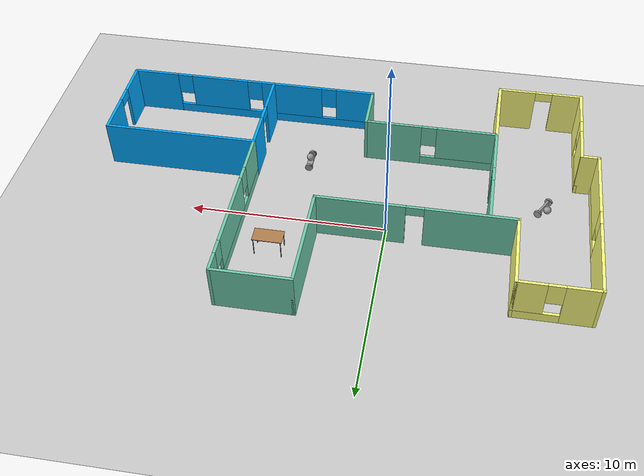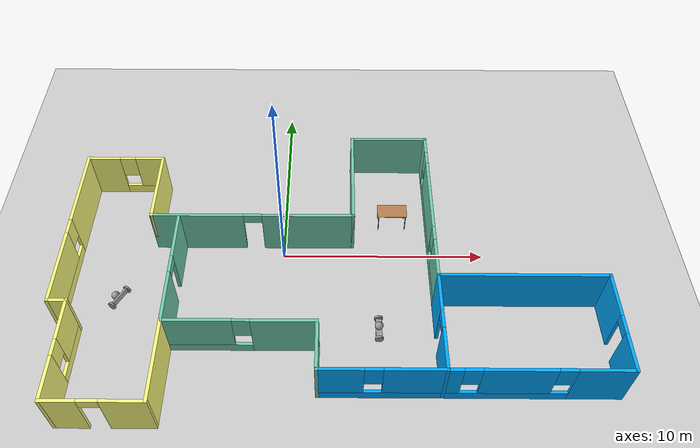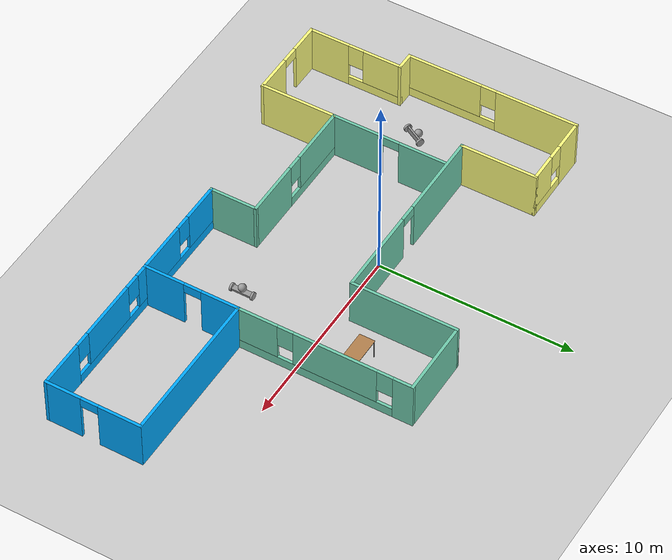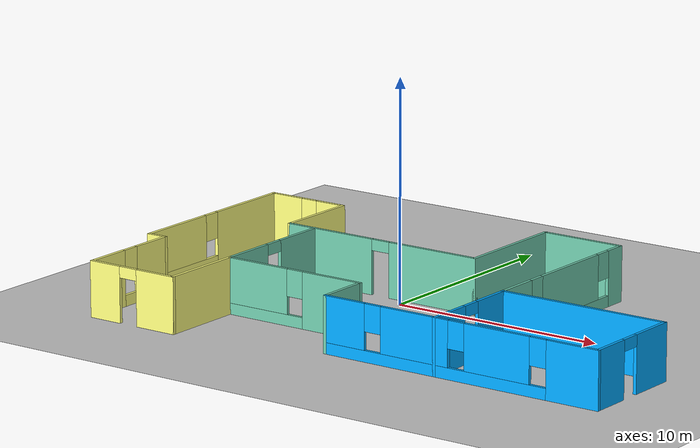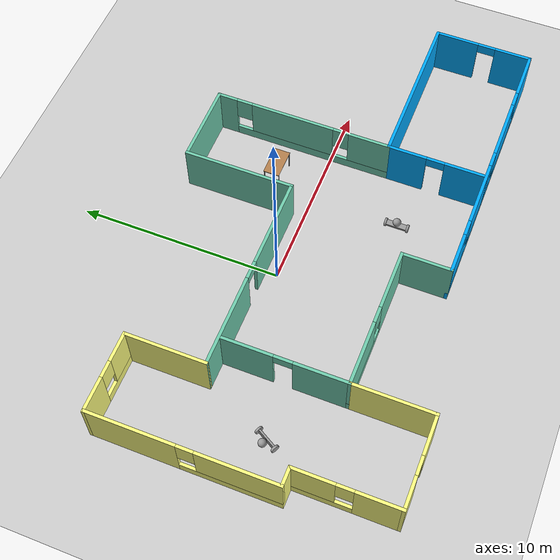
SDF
<sdf version="1.6">
 <world name="default">
  <plugin name="hello" filename="libhello.so"/>
  <light name="sun" type="directional">
   <pose>0 0 10 0 -0 0</pose>
   <diffuse>0.8 0.8 0.8 1</diffuse>
   <specular>0.2 0.2 0.2 1</specular>
   <attenuation>
    <range>1000</range>
    <constant>0.9</constant>
    <linear>0.01</linear>
    <quadratic>0.001</quadratic>
   </attenuation>
   <direction>-0.5 0.1 -0.9</direction>
  </light>
  <model name="ground_plane">
   <static>1</static>
   <link name="link">
    <collision name="collision">
     <geometry><plane><normal>0 0 1</normal><size>100 100</size></plane></geometry>
     <surface><friction><ode><mu>100</mu><mu2>50</mu2></ode></friction></surface>
    </collision>
    <visual name="visual">
     <cast_shadows>0</cast_shadows>
     <geometry><plane><normal>0 0 1</normal><size>100 100</size></plane></geometry>
     <material>
      <script><uri>file://media/materials/scripts/gazebo.material</uri><name>Gazebo/Grey</name></script>
     </material>
    </visual>
   </link>
  </model>
  <gravity>0 0 -9.8</gravity>
  <magnetic_field>6e-06 2.3e-05 -4.2e-05</magnetic_field>
  <atmosphere type="adiabatic"/>
  <physics name="default_physics" default="0" type="ode">
   <max_step_size>0.001</max_step_size>
   <real_time_factor>1</real_time_factor>
   <real_time_update_rate>1000</real_time_update_rate>
  </physics>
  <scene><ambient>0.4 0.4 0.4 1</ambient><background>0.7 0.7 0.7 1</background><shadows>1</shadows></scene>
  <spherical_coordinates>
   <surface_model>EARTH_WGS84</surface_model>
   <latitude_deg>0</latitude_deg>
   <longitude_deg>0</longitude_deg>
   <elevation>0</elevation>
   <heading_deg>0</heading_deg>
  </spherical_coordinates>
  <model name="mybuilding">
   <pose>2.451 -1.62905 0 0 -0 0</pose>
   <link name="Wall_10">
    <collision name="Wall_10_Collision">
     <geometry><box><size>8 0.15 2.5</size></box></geometry>
     <pose>0 0 1.25 0 -0 0</pose>
    </collision>
    <visual name="Wall_10_Visual">
     <pose>0 0 1.25 0 -0 0</pose>
     <geometry><box><size>8 0.15 2.5</size></box></geometry>
     <material>
      <script><uri>file://media/materials/scripts/gazebo.material</uri><name>Gazebo/Grey</name></script>
      <ambient>0 0.666667 1 1</ambient>
     </material>
     <meta><layer>0</layer></meta>
    </visual>
    <pose>8.775 -1.25 0 0 -0 0</pose>
   </link>
   <link name="Wall_11">
    <pose>12.7 -3.675 0 0 0 -1.5708</pose>
    <visual name="Wall_11_Visual_0">
     <pose>-1.38672 0 1.25 0 -0 0</pose>
     <geometry><box><size>2.22655 0.15 2.5</size></box></geometry>
     <material>
      <script><uri>file://media/materials/scripts/gazebo.material</uri><name>Gazebo/Grey</name></script>
      <ambient>0 0.666667 1 1</ambient>
     </material>
     <meta><layer>0</layer></meta>
    </visual>
    <collision name="Wall_11_Collision_0">
     <geometry><box><size>2.22655 0.15 2.5</size></box></geometry>
     <pose>-1.38672 0 1.25 0 -0 0</pose>
    </collision>
    <visual name="Wall_11_Visual_1">
     <pose>1.56327 0 1.25 0 -0 0</pose>
     <geometry><box><size>1.87345 0.15 2.5</size></box></geometry>
     <material>
      <script><uri>file://media/materials/scripts/gazebo.material</uri><name>Gazebo/Grey</name></script>
      <ambient>0 0.666667 1 1</ambient>
     </material>
     <meta><layer>0</layer></meta>
    </visual>
    <collision name="Wall_11_Collision_1">
     <geometry><box><size>1.87345 0.15 2.5</size></box></geometry>
     <pose>1.56327 0 1.25 0 -0 0</pose>
    </collision>
    <visual name="Wall_11_Visual_2">
     <pose>0.17655 0 2.25 0 -0 0</pose>
     <geometry><box><size>0.9 0.15 0.5</size></box></geometry>
     <material>
      <script><uri>file://media/materials/scripts/gazebo.material</uri><name>Gazebo/Grey</name></script>
      <ambient>0 0.666667 1 1</ambient>
     </material>
     <meta><layer>0</layer></meta>
    </visual>
    <collision name="Wall_11_Collision_2">
     <geometry><box><size>0.9 0.15 0.5</size></box></geometry>
     <pose>0.17655 0 2.25 0 -0 0</pose>
    </collision>
   </link>
   <link name="Wall_12">
    <pose>6.025 -6.1 0 0 -0 3.14159</pose>
    <visual name="Wall_12_Visual_0">
     <pose>-5.50693 0 1.25 0 -0 0</pose>
     <geometry><box><size>2.48615 0.15 2.5</size></box></geometry>
     <material>
      <script><uri>file://media/materials/scripts/gazebo.material</uri><name>Gazebo/Grey</name></script>
      <ambient>0 0.666667 1 1</ambient>
     </material>
     <meta><layer>0</layer></meta>
    </visual>
    <collision name="Wall_12_Collision_0">
     <geometry><box><size>2.48615 0.15 2.5</size></box></geometry>
     <pose>-5.50693 0 1.25 0 -0 0</pose>
    </collision>
    <visual name="Wall_12_Visual_1">
     <pose>1.24307 0 0.25 0 -0 0</pose>
     <geometry><box><size>11.0139 0.15 0.5</size></box></geometry>
     <material>
      <script><uri>file://media/materials/scripts/gazebo.material</uri><name>Gazebo/Grey</name></script>
      <ambient>0 0.666667 1 1</ambient>
     </material>
     <meta><layer>0</layer></meta>
    </visual>
    <collision name="Wall_12_Collision_1">
     <geometry><box><size>11.0139 0.15 0.5</size></box></geometry>
     <pose>1.24307 0 0.25 0 -0 0</pose>
    </collision>
    <visual name="Wall_12_Visual_2">
     <pose>-1.88385 0 1.5 0 -0 0</pose>
     <geometry><box><size>3.16 0.15 2</size></box></geometry>
     <material>
      <script><uri>file://media/materials/scripts/gazebo.material</uri><name>Gazebo/Grey</name></script>
      <ambient>0 0.666667 1 1</ambient>
     </material>
     <meta><layer>0</layer></meta>
    </visual>
    <collision name="Wall_12_Collision_2">
     <geometry><box><size>3.16 0.15 2</size></box></geometry>
     <pose>-1.88385 0 1.5 0 -0 0</pose>
    </collision>
    <visual name="Wall_12_Visual_3">
     <pose>2.17615 0 1.5 0 -0 0</pose>
     <geometry><box><size>3.36 0.15 2</size></box></geometry>
     <material>
      <script><uri>file://media/materials/scripts/gazebo.material</uri><name>Gazebo/Grey</name></script>
      <ambient>0 0.666667 1 1</ambient>
     </material>
     <meta><layer>0</layer></meta>
    </visual>
    <collision name="Wall_12_Collision_3">
     <geometry><box><size>3.36 0.15 2</size></box></geometry>
     <pose>2.17615 0 1.5 0 -0 0</pose>
    </collision>
    <visual name="Wall_12_Visual_4">
     <pose>5.70307 0 1.5 0 -0 0</pose>
     <geometry><box><size>2.09385 0.15 2</size></box></geometry>
     <material>
      <script><uri>file://media/materials/scripts/gazebo.material</uri><name>Gazebo/Grey</name></script>
      <ambient>0 0.666667 1 1</ambient>
     </material>
     <meta><layer>0</layer></meta>
    </visual>
    <collision name="Wall_12_Collision_4">
     <geometry><box><size>2.09385 0.15 2</size></box></geometry>
     <pose>5.70307 0 1.5 0 -0 0</pose>
    </collision>
    <visual name="Wall_12_Visual_5">
     <pose>-3.86385 0 1.9 0 -0 0</pose>
     <geometry><box><size>0.8 0.15 1.2</size></box></geometry>
     <material>
      <script><uri>file://media/materials/scripts/gazebo.material</uri><name>Gazebo/Grey</name></script>
      <ambient>0 0.666667 1 1</ambient>
     </material>
     <meta><layer>0</layer></meta>
    </visual>
    <collision name="Wall_12_Collision_5">
     <geometry><box><size>0.8 0.15 1.2</size></box></geometry>
     <pose>-3.86385 0 1.9 0 -0 0</pose>
    </collision>
    <visual name="Wall_12_Visual_6">
     <pose>0.096148 0 1.9 0 -0 0</pose>
     <geometry><box><size>0.8 0.15 1.2</size></box></geometry>
     <material>
      <script><uri>file://media/materials/scripts/gazebo.material</uri><name>Gazebo/Grey</name></script>
      <ambient>0 0.666667 1 1</ambient>
     </material>
     <meta><layer>0</layer></meta>
    </visual>
    <collision name="Wall_12_Collision_6">
     <geometry><box><size>0.8 0.15 1.2</size></box></geometry>
     <pose>0.096148 0 1.9 0 -0 0</pose>
    </collision>
    <visual name="Wall_12_Visual_7">
     <pose>4.25615 0 1.9 0 -0 0</pose>
     <geometry><box><size>0.8 0.15 1.2</size></box></geometry>
     <material>
      <script><uri>file://media/materials/scripts/gazebo.material</uri><name>Gazebo/Grey</name></script>
      <ambient>0 0.666667 1 1</ambient>
     </material>
     <meta><layer>0</layer></meta>
    </visual>
    <collision name="Wall_12_Collision_7">
     <geometry><box><size>0.8 0.15 1.2</size></box></geometry>
     <pose>4.25615 0 1.9 0 -0 0</pose>
    </collision>
   </link>
   <link name="Wall_13">
    <collision name="Wall_13_Collision">
     <geometry><box><size>2.5 0.15 2.5</size></box></geometry>
     <pose>0 0 1.25 0 -0 0</pose>
    </collision>
    <visual name="Wall_13_Visual">
     <pose>0 0 1.25 0 -0 0</pose>
     <geometry><box><size>2.5 0.15 2.5</size></box></geometry>
     <material>
      <script><uri>file://media/materials/scripts/gazebo.material</uri><name>Gazebo/Grey</name></script>
      <ambient>0.435294 0.796078 0.67451 1</ambient>
     </material>
     <meta><layer>0</layer></meta>
    </visual>
    <pose>-0.65 -4.925 0 0 -0 1.5708</pose>
   </link>
   <link name="Wall_14">
    <pose>-4.075 -3.75 0 0 -0 3.14159</pose>
    <visual name="Wall_14_Visual_0">
     <pose>-1.99193 0 1.25 0 -0 0</pose>
     <geometry><box><size>3.01615 0.15 2.5</size></box></geometry>
     <material>
      <script><uri>file://media/materials/scripts/gazebo.material</uri><name>Gazebo/Grey</name></script>
      <ambient>0.435294 0.796078 0.67451 1</ambient>
     </material>
     <meta><layer>0</layer></meta>
    </visual>
    <collision name="Wall_14_Collision_0">
     <geometry><box><size>3.01615 0.15 2.5</size></box></geometry>
     <pose>-1.99193 0 1.25 0 -0 0</pose>
    </collision>
    <visual name="Wall_14_Visual_1">
     <pose>1.50807 0 0.25 0 -0 0</pose>
     <geometry><box><size>3.98385 0.15 0.5</size></box></geometry>
     <material>
      <script><uri>file://media/materials/scripts/gazebo.material</uri><name>Gazebo/Grey</name></script>
      <ambient>0.435294 0.796078 0.67451 1</ambient>
     </material>
     <meta><layer>0</layer></meta>
    </visual>
    <collision name="Wall_14_Collision_1">
     <geometry><box><size>3.98385 0.15 0.5</size></box></geometry>
     <pose>1.50807 0 0.25 0 -0 0</pose>
    </collision>
    <visual name="Wall_14_Visual_2">
     <pose>1.90807 0 1.5 0 -0 0</pose>
     <geometry><box><size>3.18385 0.15 2</size></box></geometry>
     <material>
      <script><uri>file://media/materials/scripts/gazebo.material</uri><name>Gazebo/Grey</name></script>
      <ambient>0.435294 0.796078 0.67451 1</ambient>
     </material>
     <meta><layer>0</layer></meta>
    </visual>
    <collision name="Wall_14_Collision_2">
     <geometry><box><size>3.18385 0.15 2</size></box></geometry>
     <pose>1.90807 0 1.5 0 -0 0</pose>
    </collision>
    <visual name="Wall_14_Visual_3">
     <pose>-0.083852 0 1.9 0 -0 0</pose>
     <geometry><box><size>0.8 0.15 1.2</size></box></geometry>
     <material>
      <script><uri>file://media/materials/scripts/gazebo.material</uri><name>Gazebo/Grey</name></script>
      <ambient>0.435294 0.796078 0.67451 1</ambient>
     </material>
     <meta><layer>0</layer></meta>
    </visual>
    <collision name="Wall_14_Collision_3">
     <geometry><box><size>0.8 0.15 1.2</size></box></geometry>
     <pose>-0.083852 0 1.9 0 -0 0</pose>
    </collision>
   </link>
   <link name="Wall_16">
    <collision name="Wall_16_Collision">
     <geometry><box><size>4 0.15 2.5</size></box></geometry>
     <pose>0 0 1.25 0 -0 0</pose>
    </collision>
    <visual name="Wall_16_Visual">
     <pose>0 0 1.25 0 -0 0</pose>
     <geometry><box><size>4 0.15 2.5</size></box></geometry>
     <material>
      <script><uri>file://media/materials/scripts/gazebo.material</uri><name>Gazebo/Grey</name></script>
      <ambient>1 1 0.498039 1</ambient>
     </material>
     <meta><layer>0</layer></meta>
    </visual>
    <pose>-7.5 -5.675 0 0 0 -1.5708</pose>
   </link>
   <link name="Wall_17">
    <pose>-9.675 -7.6 0 0 -0 3.14159</pose>
    <visual name="Wall_17_Visual_0">
     <pose>-1.25193 0 1.25 0 -0 0</pose>
     <geometry><box><size>1.99615 0.15 2.5</size></box></geometry>
     <material>
      <script><uri>file://media/materials/scripts/gazebo.material</uri><name>Gazebo/Grey</name></script>
      <ambient>1 1 0.498039 1</ambient>
     </material>
     <meta><layer>0</layer></meta>
    </visual>
    <collision name="Wall_17_Collision_0">
     <geometry><box><size>1.99615 0.15 2.5</size></box></geometry>
     <pose>-1.25193 0 1.25 0 -0 0</pose>
    </collision>
    <visual name="Wall_17_Visual_1">
     <pose>1.44807 0 1.25 0 -0 0</pose>
     <geometry><box><size>1.60385 0.15 2.5</size></box></geometry>
     <material>
      <script><uri>file://media/materials/scripts/gazebo.material</uri><name>Gazebo/Grey</name></script>
      <ambient>1 1 0.498039 1</ambient>
     </material>
     <meta><layer>0</layer></meta>
    </visual>
    <collision name="Wall_17_Collision_1">
     <geometry><box><size>1.60385 0.15 2.5</size></box></geometry>
     <pose>1.44807 0 1.25 0 -0 0</pose>
    </collision>
    <visual name="Wall_17_Visual_2">
     <pose>0.196148 0 2.25 0 -0 0</pose>
     <geometry><box><size>0.9 0.15 0.5</size></box></geometry>
     <material>
      <script><uri>file://media/materials/scripts/gazebo.material</uri><name>Gazebo/Grey</name></script>
      <ambient>1 1 0.498039 1</ambient>
     </material>
     <meta><layer>0</layer></meta>
    </visual>
    <collision name="Wall_17_Collision_2">
     <geometry><box><size>0.9 0.15 0.5</size></box></geometry>
     <pose>0.196148 0 2.25 0 -0 0</pose>
    </collision>
   </link>
   <link name="Wall_18">
    <pose>-11.85 -5.175 0 0 -0 1.5708</pose>
    <visual name="Wall_18_Visual_0">
     <pose>-1.42827 0 1.25 0 -0 0</pose>
     <geometry><box><size>2.14345 0.15 2.5</size></box></geometry>
     <material>
      <script><uri>file://media/materials/scripts/gazebo.material</uri><name>Gazebo/Grey</name></script>
      <ambient>1 1 0.498039 1</ambient>
     </material>
     <meta><layer>0</layer></meta>
    </visual>
    <collision name="Wall_18_Collision_0">
     <geometry><box><size>2.14345 0.15 2.5</size></box></geometry>
     <pose>-1.42827 0 1.25 0 -0 0</pose>
    </collision>
    <visual name="Wall_18_Visual_1">
     <pose>1.07173 0 0.25 0 -0 0</pose>
     <geometry><box><size>2.85655 0.15 0.5</size></box></geometry>
     <material>
      <script><uri>file://media/materials/scripts/gazebo.material</uri><name>Gazebo/Grey</name></script>
      <ambient>1 1 0.498039 1</ambient>
     </material>
     <meta><layer>0</layer></meta>
    </visual>
    <collision name="Wall_18_Collision_1">
     <geometry><box><size>2.85655 0.15 0.5</size></box></geometry>
     <pose>1.07173 0 0.25 0 -0 0</pose>
    </collision>
    <visual name="Wall_18_Visual_2">
     <pose>1.47172 0 1.5 0 -0 0</pose>
     <geometry><box><size>2.05655 0.15 2</size></box></geometry>
     <material>
      <script><uri>file://media/materials/scripts/gazebo.material</uri><name>Gazebo/Grey</name></script>
      <ambient>1 1 0.498039 1</ambient>
     </material>
     <meta><layer>0</layer></meta>
    </visual>
    <collision name="Wall_18_Collision_2">
     <geometry><box><size>2.05655 0.15 2</size></box></geometry>
     <pose>1.47172 0 1.5 0 -0 0</pose>
    </collision>
    <visual name="Wall_18_Visual_3">
     <pose>0.04345 0 1.9 0 -0 0</pose>
     <geometry><box><size>0.8 0.15 1.2</size></box></geometry>
     <material>
      <script><uri>file://media/materials/scripts/gazebo.material</uri><name>Gazebo/Grey</name></script>
      <ambient>1 1 0.498039 1</ambient>
     </material>
     <meta><layer>0</layer></meta>
    </visual>
    <collision name="Wall_18_Collision_3">
     <geometry><box><size>0.8 0.15 1.2</size></box></geometry>
     <pose>0.04345 0 1.9 0 -0 0</pose>
    </collision>
   </link>
   <link name="Wall_20">
    <pose>-12.7 1.675 0 0 0 -1.5708</pose>
    <visual name="Wall_20_Visual_0">
     <pose>-2.36673 0 1.25 0 -0 0</pose>
     <geometry><box><size>4.26655 0.15 2.5</size></box></geometry>
     <material>
      <script><uri>file://media/materials/scripts/gazebo.material</uri><name>Gazebo/Grey</name></script>
      <ambient>1 1 0.498039 1</ambient>
     </material>
     <meta><layer>0</layer></meta>
    </visual>
    <collision name="Wall_20_Collision_0">
     <geometry><box><size>4.26655 0.15 2.5</size></box></geometry>
     <pose>-2.36673 0 1.25 0 -0 0</pose>
    </collision>
    <visual name="Wall_20_Visual_1">
     <pose>2.13327 0 0.25 0 -0 0</pose>
     <geometry><box><size>4.73345 0.15 0.5</size></box></geometry>
     <material>
      <script><uri>file://media/materials/scripts/gazebo.material</uri><name>Gazebo/Grey</name></script>
      <ambient>1 1 0.498039 1</ambient>
     </material>
     <meta><layer>0</layer></meta>
    </visual>
    <collision name="Wall_20_Collision_1">
     <geometry><box><size>4.73345 0.15 0.5</size></box></geometry>
     <pose>2.13327 0 0.25 0 -0 0</pose>
    </collision>
    <visual name="Wall_20_Visual_2">
     <pose>2.53328 0 1.5 0 -0 0</pose>
     <geometry><box><size>3.93345 0.15 2</size></box></geometry>
     <material>
      <script><uri>file://media/materials/scripts/gazebo.material</uri><name>Gazebo/Grey</name></script>
      <ambient>1 1 0.498039 1</ambient>
     </material>
     <meta><layer>0</layer></meta>
    </visual>
    <collision name="Wall_20_Collision_2">
     <geometry><box><size>3.93345 0.15 2</size></box></geometry>
     <pose>2.53328 0 1.5 0 -0 0</pose>
    </collision>
    <visual name="Wall_20_Visual_3">
     <pose>0.16655 0 1.9 0 -0 0</pose>
     <geometry><box><size>0.8 0.15 1.2</size></box></geometry>
     <material>
      <script><uri>file://media/materials/scripts/gazebo.material</uri><name>Gazebo/Grey</name></script>
      <ambient>1 1 0.498039 1</ambient>
     </material>
     <meta><layer>0</layer></meta>
    </visual>
    <collision name="Wall_20_Collision_3">
     <geometry><box><size>0.8 0.15 1.2</size></box></geometry>
     <pose>0.16655 0 1.9 0 -0 0</pose>
    </collision>
   </link>
   <link name="Wall_22">
    <collision name="Wall_22_Collision">
     <geometry><box><size>1 0.15 2.5</size></box></geometry>
     <pose>0 0 1.25 0 -0 0</pose>
    </collision>
    <visual name="Wall_22_Visual">
     <pose>0 0 1.25 0 -0 0</pose>
     <geometry><box><size>1 0.15 2.5</size></box></geometry>
     <material>
      <script><uri>file://media/materials/scripts/gazebo.material</uri><name>Gazebo/Grey</name></script>
      <ambient>1 1 0.498039 1</ambient>
     </material>
     <meta><layer>0</layer></meta>
    </visual>
    <pose>-12.275 -2.75 0 0 -0 3.14159</pose>
   </link>
   <link name="Wall_24">
    <pose>4.85 -3.675 0 0 0 -1.5708</pose>
    <visual name="Wall_24_Visual_0">
     <pose>-1.5116 0 1.25 0 -0 0</pose>
     <geometry><box><size>1.97679 0.15 2.5</size></box></geometry>
     <material>
      <script><uri>file://media/materials/scripts/gazebo.material</uri><name>Gazebo/Grey</name></script>
      <ambient>0 0.666667 1 1</ambient>
     </material>
     <meta><layer>0</layer></meta>
    </visual>
    <collision name="Wall_24_Collision_0">
     <geometry><box><size>1.97679 0.15 2.5</size></box></geometry>
     <pose>-1.5116 0 1.25 0 -0 0</pose>
    </collision>
    <visual name="Wall_24_Visual_1">
     <pose>1.4384 0 1.25 0 -0 0</pose>
     <geometry><box><size>2.12321 0.15 2.5</size></box></geometry>
     <material>
      <script><uri>file://media/materials/scripts/gazebo.material</uri><name>Gazebo/Grey</name></script>
      <ambient>0 0.666667 1 1</ambient>
     </material>
     <meta><layer>0</layer></meta>
    </visual>
    <collision name="Wall_24_Collision_1">
     <geometry><box><size>2.12321 0.15 2.5</size></box></geometry>
     <pose>1.4384 0 1.25 0 -0 0</pose>
    </collision>
    <visual name="Wall_24_Visual_2">
     <pose>-0.073207 0 2.25 0 -0 0</pose>
     <geometry><box><size>0.9 0.15 0.5</size></box></geometry>
     <material>
      <script><uri>file://media/materials/scripts/gazebo.material</uri><name>Gazebo/Grey</name></script>
      <ambient>0 0.666667 1 1</ambient>
     </material>
     <meta><layer>0</layer></meta>
    </visual>
    <collision name="Wall_24_Collision_2">
     <geometry><box><size>0.9 0.15 0.5</size></box></geometry>
     <pose>-0.073207 0 2.25 0 -0 0</pose>
    </collision>
   </link>
   <link name="Wall_26">
    <pose>-7.5 -0.825 0 0 -0 1.5708</pose>
    <visual name="Wall_26_Visual_0">
     <pose>-1.6734 0 1.25 0 -0 0</pose>
     <geometry><box><size>2.65321 0.15 2.5</size></box></geometry>
     <material>
      <script><uri>file://media/materials/scripts/gazebo.material</uri><name>Gazebo/Grey</name></script>
      <ambient>0.435294 0.796078 0.67451 1</ambient>
     </material>
     <meta><layer>0</layer></meta>
    </visual>
    <collision name="Wall_26_Collision_0">
     <geometry><box><size>2.65321 0.15 2.5</size></box></geometry>
     <pose>-1.6734 0 1.25 0 -0 0</pose>
    </collision>
    <visual name="Wall_26_Visual_1">
     <pose>1.7766 0 1.25 0 -0 0</pose>
     <geometry><box><size>2.44679 0.15 2.5</size></box></geometry>
     <material>
      <script><uri>file://media/materials/scripts/gazebo.material</uri><name>Gazebo/Grey</name></script>
      <ambient>0.435294 0.796078 0.67451 1</ambient>
     </material>
     <meta><layer>0</layer></meta>
    </visual>
    <collision name="Wall_26_Collision_1">
     <geometry><box><size>2.44679 0.15 2.5</size></box></geometry>
     <pose>1.7766 0 1.25 0 -0 0</pose>
    </collision>
    <visual name="Wall_26_Visual_2">
     <pose>0.103207 0 2.25 0 -0 0</pose>
     <geometry><box><size>0.9 0.15 0.5</size></box></geometry>
     <material>
      <script><uri>file://media/materials/scripts/gazebo.material</uri><name>Gazebo/Grey</name></script>
      <ambient>0.435294 0.796078 0.67451 1</ambient>
     </material>
     <meta><layer>0</layer></meta>
    </visual>
    <collision name="Wall_26_Collision_2">
     <geometry><box><size>0.9 0.15 0.5</size></box></geometry>
     <pose>0.103207 0 2.25 0 -0 0</pose>
    </collision>
   </link>
   <link name="Wall_4">
    <pose>-10.775 6.1 0 0 -0 0</pose>
    <visual name="Wall_4_Visual_0">
     <pose>-1.14807 0 1.25 0 -0 0</pose>
     <geometry><box><size>1.70385 0.15 2.5</size></box></geometry>
     <material>
      <script><uri>file://media/materials/scripts/gazebo.material</uri><name>Gazebo/Grey</name></script>
      <ambient>1 1 0.498039 1</ambient>
     </material>
     <meta><layer>0</layer></meta>
    </visual>
    <collision name="Wall_4_Collision_0">
     <geometry><box><size>1.70385 0.15 2.5</size></box></geometry>
     <pose>-1.14807 0 1.25 0 -0 0</pose>
    </collision>
    <visual name="Wall_4_Visual_1">
     <pose>0.851926 0 0.25 0 -0 0</pose>
     <geometry><box><size>2.29615 0.15 0.5</size></box></geometry>
     <material>
      <script><uri>file://media/materials/scripts/gazebo.material</uri><name>Gazebo/Grey</name></script>
      <ambient>1 1 0.498039 1</ambient>
     </material>
     <meta><layer>0</layer></meta>
    </visual>
    <collision name="Wall_4_Collision_1">
     <geometry><box><size>2.29615 0.15 0.5</size></box></geometry>
     <pose>0.851926 0 0.25 0 -0 0</pose>
    </collision>
    <visual name="Wall_4_Visual_2">
     <pose>1.25193 0 1.5 0 -0 0</pose>
     <geometry><box><size>1.49615 0.15 2</size></box></geometry>
     <material>
      <script><uri>file://media/materials/scripts/gazebo.material</uri><name>Gazebo/Grey</name></script>
      <ambient>1 1 0.498039 1</ambient>
     </material>
     <meta><layer>0</layer></meta>
    </visual>
    <collision name="Wall_4_Collision_2">
     <geometry><box><size>1.49615 0.15 2</size></box></geometry>
     <pose>1.25193 0 1.5 0 -0 0</pose>
    </collision>
    <visual name="Wall_4_Visual_3">
     <pose>0.103852 0 1.9 0 -0 0</pose>
     <geometry><box><size>0.8 0.15 1.2</size></box></geometry>
     <material>
      <script><uri>file://media/materials/scripts/gazebo.material</uri><name>Gazebo/Grey</name></script>
      <ambient>1 1 0.498039 1</ambient>
     </material>
     <meta><layer>0</layer></meta>
    </visual>
    <collision name="Wall_4_Collision_3">
     <geometry><box><size>0.8 0.15 1.2</size></box></geometry>
     <pose>0.103852 0 1.9 0 -0 0</pose>
    </collision>
   </link>
   <link name="Wall_5">
    <collision name="Wall_5_Collision">
     <geometry><box><size>4 0.15 2.5</size></box></geometry>
     <pose>0 0 1.25 0 -0 0</pose>
    </collision>
    <visual name="Wall_5_Visual">
     <pose>0 0 1.25 0 -0 0</pose>
     <geometry><box><size>4 0.15 2.5</size></box></geometry>
     <material>
      <script><uri>file://media/materials/scripts/gazebo.material</uri><name>Gazebo/Grey</name></script>
      <ambient>1 1 0.498039 1</ambient>
     </material>
     <meta><layer>0</layer></meta>
    </visual>
    <pose>-8.85 4.175 0 0 0 -1.5708</pose>
   </link>
   <link name="Wall_6">
    <pose>-3.925 2.25 0 0 -0 0</pose>
    <visual name="Wall_6_Visual_0">
     <pose>-2.71807 0 1.25 0 -0 0</pose>
     <geometry><box><size>4.56385 0.15 2.5</size></box></geometry>
     <material>
      <script><uri>file://media/materials/scripts/gazebo.material</uri><name>Gazebo/Grey</name></script>
      <ambient>0.435294 0.796078 0.67451 1</ambient>
     </material>
     <meta><layer>0</layer></meta>
    </visual>
    <collision name="Wall_6_Collision_0">
     <geometry><box><size>4.56385 0.15 2.5</size></box></geometry>
     <pose>-2.71807 0 1.25 0 -0 0</pose>
    </collision>
    <visual name="Wall_6_Visual_1">
     <pose>2.73193 0 1.25 0 -0 0</pose>
     <geometry><box><size>4.53615 0.15 2.5</size></box></geometry>
     <material>
      <script><uri>file://media/materials/scripts/gazebo.material</uri><name>Gazebo/Grey</name></script>
      <ambient>0.435294 0.796078 0.67451 1</ambient>
     </material>
     <meta><layer>0</layer></meta>
    </visual>
    <collision name="Wall_6_Collision_1">
     <geometry><box><size>4.53615 0.15 2.5</size></box></geometry>
     <pose>2.73193 0 1.25 0 -0 0</pose>
    </collision>
    <visual name="Wall_6_Visual_2">
     <pose>0.013852 0 2.25 0 -0 0</pose>
     <geometry><box><size>0.9 0.15 0.5</size></box></geometry>
     <material>
      <script><uri>file://media/materials/scripts/gazebo.material</uri><name>Gazebo/Grey</name></script>
      <ambient>0.435294 0.796078 0.67451 1</ambient>
     </material>
     <meta><layer>0</layer></meta>
    </visual>
    <collision name="Wall_6_Collision_2">
     <geometry><box><size>0.9 0.15 0.5</size></box></geometry>
     <pose>0.013852 0 2.25 0 -0 0</pose>
    </collision>
   </link>
   <link name="Wall_7">
    <collision name="Wall_7_Collision">
     <geometry><box><size>5.5 0.15 2.5</size></box></geometry>
     <pose>0 0 1.25 0 -0 0</pose>
    </collision>
    <visual name="Wall_7_Visual">
     <pose>0 0 1.25 0 -0 0</pose>
     <geometry><box><size>5.5 0.15 2.5</size></box></geometry>
     <material>
      <script><uri>file://media/materials/scripts/gazebo.material</uri><name>Gazebo/Grey</name></script>
      <ambient>0.435294 0.796078 0.67451 1</ambient>
     </material>
     <meta><layer>0</layer></meta>
    </visual>
    <pose>1 4.925 0 0 -0 1.5708</pose>
   </link>
   <link name="Wall_8">
    <collision name="Wall_8_Collision">
     <geometry><box><size>4 0.15 2.5</size></box></geometry>
     <pose>0 0 1.25 0 -0 0</pose>
    </collision>
    <visual name="Wall_8_Visual">
     <pose>0 0 1.25 0 -0 0</pose>
     <geometry><box><size>4 0.15 2.5</size></box></geometry>
     <material>
      <script><uri>file://media/materials/scripts/gazebo.material</uri><name>Gazebo/Grey</name></script>
      <ambient>0.435294 0.796078 0.67451 1</ambient>
     </material>
     <meta><layer>0</layer></meta>
    </visual>
    <pose>2.925 7.6 0 0 -0 0</pose>
   </link>
   <link name="Wall_9">
    <pose>4.85 3.175 0 0 0 -1.5708</pose>
    <visual name="Wall_9_Visual_0">
     <pose>-3.97673 0 1.25 0 -0 0</pose>
     <geometry><box><size>1.04655 0.15 2.5</size></box></geometry>
     <material>
      <script><uri>file://media/materials/scripts/gazebo.material</uri><name>Gazebo/Grey</name></script>
      <ambient>0.435294 0.796078 0.67451 1</ambient>
     </material>
     <meta><layer>0</layer></meta>
    </visual>
    <collision name="Wall_9_Collision_0">
     <geometry><box><size>1.04655 0.15 2.5</size></box></geometry>
     <pose>-3.97673 0 1.25 0 -0 0</pose>
    </collision>
    <visual name="Wall_9_Visual_1">
     <pose>0.523275 0 0.25 0 -0 0</pose>
     <geometry><box><size>7.95345 0.15 0.5</size></box></geometry>
     <material>
      <script><uri>file://media/materials/scripts/gazebo.material</uri><name>Gazebo/Grey</name></script>
      <ambient>0.435294 0.796078 0.67451 1</ambient>
     </material>
     <meta><layer>0</layer></meta>
    </visual>
    <collision name="Wall_9_Collision_1">
     <geometry><box><size>7.95345 0.15 0.5</size></box></geometry>
     <pose>0.523275 0 0.25 0 -0 0</pose>
    </collision>
    <visual name="Wall_9_Visual_2">
     <pose>-0.53345 0 1.5 0 -0 0</pose>
     <geometry><box><size>4.24 0.15 2</size></box></geometry>
     <material>
      <script><uri>file://media/materials/scripts/gazebo.material</uri><name>Gazebo/Grey</name></script>
      <ambient>0.435294 0.796078 0.67451 1</ambient>
     </material>
     <meta><layer>0</layer></meta>
    </visual>
    <collision name="Wall_9_Collision_2">
     <geometry><box><size>4.24 0.15 2</size></box></geometry>
     <pose>-0.53345 0 1.5 0 -0 0</pose>
    </collision>
    <visual name="Wall_9_Visual_3">
     <pose>3.44327 0 1.5 0 -0 0</pose>
     <geometry><box><size>2.11345 0.15 2</size></box></geometry>
     <material>
      <script><uri>file://media/materials/scripts/gazebo.material</uri><name>Gazebo/Grey</name></script>
      <ambient>0.435294 0.796078 0.67451 1</ambient>
     </material>
     <meta><layer>0</layer></meta>
    </visual>
    <collision name="Wall_9_Collision_3">
     <geometry><box><size>2.11345 0.15 2</size></box></geometry>
     <pose>3.44327 0 1.5 0 -0 0</pose>
    </collision>
    <visual name="Wall_9_Visual_4">
     <pose>-3.05345 0 1.9 0 -0 0</pose>
     <geometry><box><size>0.8 0.15 1.2</size></box></geometry>
     <material>
      <script><uri>file://media/materials/scripts/gazebo.material</uri><name>Gazebo/Grey</name></script>
      <ambient>0.435294 0.796078 0.67451 1</ambient>
     </material>
     <meta><layer>0</layer></meta>
    </visual>
    <collision name="Wall_9_Collision_4">
     <geometry><box><size>0.8 0.15 1.2</size></box></geometry>
     <pose>-3.05345 0 1.9 0 -0 0</pose>
    </collision>
    <visual name="Wall_9_Visual_5">
     <pose>1.98655 0 1.9 0 -0 0</pose>
     <geometry><box><size>0.8 0.15 1.2</size></box></geometry>
     <material>
      <script><uri>file://media/materials/scripts/gazebo.material</uri><name>Gazebo/Grey</name></script>
      <ambient>0.435294 0.796078 0.67451 1</ambient>
     </material>
     <meta><layer>0</layer></meta>
    </visual>
    <collision name="Wall_9_Collision_5">
     <geometry><box><size>0.8 0.15 1.2</size></box></geometry>
     <pose>1.98655 0 1.9 0 -0 0</pose>
    </collision>
   </link>
   <static>1</static>
  </model>
  <model name="table">
   <static>1</static>
   <link name="link">
    <collision name="surface">
     <pose>0 0 1 0 -0 0</pose>
     <geometry><box><size>1.5 0.8 0.03</size></box></geometry>
     <surface><friction><ode><mu>0.6</mu><mu2>0.6</mu2></ode></friction></surface>
    </collision>
    <visual name="visual1">
     <pose>0 0 1 0 -0 0</pose>
     <geometry><box><size>1.5 0.8 0.03</size></box></geometry>
     <material>
      <script><uri>file://media/materials/scripts/gazebo.material</uri><name>Gazebo/Wood</name></script>
     </material>
    </visual>
    <collision name="front_left_leg">
     <pose>0.68 0.38 0.5 0 -0 0</pose>
     <geometry><cylinder><radius>0.02</radius><length>1</length></cylinder></geometry>
    </collision>
    <visual name="front_left_leg">
     <pose>0.68 0.38 0.5 0 -0 0</pose>
     <geometry><cylinder><radius>0.02</radius><length>1</length></cylinder></geometry>
     <material>
      <script><uri>file://media/materials/scripts/gazebo.material</uri><name>Gazebo/Grey</name></script>
     </material>
    </visual>
    <collision name="front_right_leg">
     <pose>0.68 -0.38 0.5 0 -0 0</pose>
     <geometry><cylinder><radius>0.02</radius><length>1</length></cylinder></geometry>
    </collision>
    <visual name="front_right_leg">
     <pose>0.68 -0.38 0.5 0 -0 0</pose>
     <geometry><cylinder><radius>0.02</radius><length>1</length></cylinder></geometry>
     <material>
      <script><uri>file://media/materials/scripts/gazebo.material</uri><name>Gazebo/Grey</name></script>
     </material>
    </visual>
    <collision name="back_right_leg">
     <pose>-0.68 -0.38 0.5 0 -0 0</pose>
     <geometry><cylinder><radius>0.02</radius><length>1</length></cylinder></geometry>
    </collision>
    <visual name="back_right_leg">
     <pose>-0.68 -0.38 0.5 0 -0 0</pose>
     <geometry><cylinder><radius>0.02</radius><length>1</length></cylinder></geometry>
     <material>
      <script><uri>file://media/materials/scripts/gazebo.material</uri><name>Gazebo/Grey</name></script>
     </material>
    </visual>
    <collision name="back_left_leg">
     <pose>-0.68 0.38 0.5 0 -0 0</pose>
     <geometry><cylinder><radius>0.02</radius><length>1</length></cylinder></geometry>
    </collision>
    <visual name="back_left_leg">
     <pose>-0.68 0.38 0.5 0 -0 0</pose>
     <geometry><cylinder><radius>0.02</radius><length>1</length></cylinder></geometry>
     <material>
      <script><uri>file://media/materials/scripts/gazebo.material</uri><name>Gazebo/Grey</name></script>
     </material>
    </visual>
   </link>
   <pose>5.4864 2.19741 0 0 -0 0</pose>
  </model>
  <model name="robot">
   <link name="link_3">
    <pose>0.008827 0.171609 0.116667 0 -0 0</pose>
    <inertial>
     <mass>1</mass>
     <inertia>
      <ixx>0.166667</ixx>
      <ixy>0</ixy>
      <ixz>0</ixz>
      <iyy>0.166667</iyy>
      <iyz>0</iyz>
      <izz>0.166667</izz>
     </inertia>
    </inertial>
    <visual name="visual">
     <geometry><box><size>0.3 1 0.1</size></box></geometry>
     <material>
      <lighting>1</lighting>
      <script><uri>file://media/materials/scripts/gazebo.material</uri><name>Gazebo/Grey</name></script>
      <shader type="pixel"><normal_map>__default__</normal_map></shader>
      <ambient>0.3 0.3 0.3 1</ambient>
      <diffuse>0.7 0.7 0.7 1</diffuse>
      <specular>0.01 0.01 0.01 1</specular>
      <emissive>0 0 0 1</emissive>
     </material>
    </visual>
    <collision name="collision">
     <geometry><box><size>0.3 1 0.1</size></box></geometry>
     <surface>
      <friction>
       <ode><mu>1</mu><mu2>1</mu2><fdir1>0 0 0</fdir1><slip1>0</slip1><slip2>0</slip2></ode>
       <torsional>
        <coefficient>1</coefficient>
        <patch_radius>0</patch_radius>
        <surface_radius>0</surface_radius>
        <use_patch_radius>1</use_patch_radius>
        <ode><slip>0</slip></ode>
       </torsional>
      </friction>
      <bounce><restitution_coefficient>0</restitution_coefficient><threshold>1e+06</threshold></bounce>
      <contact>
       <collide_without_contact>0</collide_without_contact>
       <collide_without_contact_bitmask>1</collide_without_contact_bitmask>
       <collide_bitmask>1</collide_bitmask>
       <ode>
        <soft_cfm>0</soft_cfm>
        <soft_erp>0.2</soft_erp>
        <kp>1e+13</kp>
        <kd>1</kd>
        <max_vel>0.01</max_vel>
        <min_depth>0</min_depth>
       </ode>
       <bullet>
        <split_impulse>1</split_impulse>
        <split_impulse_penetration_threshold>-0.01</split_impulse_penetration_threshold>
        <soft_cfm>0</soft_cfm>
        <soft_erp>0.2</soft_erp>
        <kp>1e+13</kp>
        <kd>1</kd>
       </bullet>
      </contact>
     </surface>
    </collision>
   </link>
   <link name="link_4">
    <pose>0.008827 -0.378411 0.116667 1.5707 -0 0</pose>
    <inertial>
     <mass>1</mass>
     <inertia><ixx>0.145833</ixx><ixy>0</ixy><ixz>0</ixz><iyy>0.145833</iyy><iyz>0</iyz><izz>0.125</izz></inertia>
    </inertial>
    <visual name="visual">
     <geometry><cylinder><radius>0.2</radius><length>0.1</length></cylinder></geometry>
     <material>
      <lighting>1</lighting>
      <script><uri>file://media/materials/scripts/gazebo.material</uri><name>Gazebo/Grey</name></script>
      <shader type="pixel"><normal_map>__default__</normal_map></shader>
      <ambient>0.3 0.3 0.3 1</ambient>
      <diffuse>0.7 0.7 0.7 1</diffuse>
      <specular>0.01 0.01 0.01 1</specular>
      <emissive>0 0 0 1</emissive>
     </material>
    </visual>
    <collision name="collision">
     <geometry><cylinder><radius>0.2</radius><length>0.1</length></cylinder></geometry>
     <surface>
      <friction>
       <ode><mu>1</mu><mu2>1</mu2><fdir1>0 0 0</fdir1><slip1>0</slip1><slip2>0</slip2></ode>
       <torsional>
        <coefficient>1</coefficient>
        <patch_radius>0</patch_radius>
        <surface_radius>0</surface_radius>
        <use_patch_radius>1</use_patch_radius>
        <ode><slip>0</slip></ode>
       </torsional>
      </friction>
      <bounce><restitution_coefficient>0</restitution_coefficient><threshold>1e+06</threshold></bounce>
      <contact>
       <collide_without_contact>0</collide_without_contact>
       <collide_without_contact_bitmask>1</collide_without_contact_bitmask>
       <collide_bitmask>1</collide_bitmask>
       <ode>
        <soft_cfm>0</soft_cfm>
        <soft_erp>0.2</soft_erp>
        <kp>1e+13</kp>
        <kd>1</kd>
        <max_vel>0.01</max_vel>
        <min_depth>0</min_depth>
       </ode>
       <bullet>
        <split_impulse>1</split_impulse>
        <split_impulse_penetration_threshold>-0.01</split_impulse_penetration_threshold>
        <soft_cfm>0</soft_cfm>
        <soft_erp>0.2</soft_erp>
        <kp>1e+13</kp>
        <kd>1</kd>
       </bullet>
      </contact>
     </surface>
    </collision>
   </link>
   <link name="link_4_clone">
    <pose>0.008827 0.721628 0.116667 1.5707 -0 0</pose>
    <inertial>
     <mass>1</mass>
     <inertia><ixx>0.145833</ixx><ixy>0</ixy><ixz>0</ixz><iyy>0.145833</iyy><iyz>0</iyz><izz>0.125</izz></inertia>
    </inertial>
    <visual name="visual">
     <geometry><cylinder><radius>0.2</radius><length>0.1</length></cylinder></geometry>
     <material>
      <lighting>1</lighting>
      <script><uri>file://media/materials/scripts/gazebo.material</uri><name>Gazebo/Grey</name></script>
      <shader type="pixel"><normal_map>__default__</normal_map></shader>
      <ambient>0.3 0.3 0.3 1</ambient>
      <diffuse>0.7 0.7 0.7 1</diffuse>
      <specular>0.01 0.01 0.01 1</specular>
      <emissive>0 0 0 1</emissive>
     </material>
    </visual>
    <collision name="collision">
     <geometry><cylinder><radius>0.2</radius><length>0.1</length></cylinder></geometry>
     <surface>
      <friction>
       <ode><mu>1</mu><mu2>1</mu2><fdir1>0 0 0</fdir1><slip1>0</slip1><slip2>0</slip2></ode>
       <torsional>
        <coefficient>1</coefficient>
        <patch_radius>0</patch_radius>
        <surface_radius>0</surface_radius>
        <use_patch_radius>1</use_patch_radius>
        <ode><slip>0</slip></ode>
       </torsional>
      </friction>
      <bounce><restitution_coefficient>0</restitution_coefficient><threshold>1e+06</threshold></bounce>
      <contact>
       <collide_without_contact>0</collide_without_contact>
       <collide_without_contact_bitmask>1</collide_without_contact_bitmask>
       <collide_bitmask>1</collide_bitmask>
       <ode>
        <soft_cfm>0</soft_cfm>
        <soft_erp>0.2</soft_erp>
        <kp>1e+13</kp>
        <kd>1</kd>
        <max_vel>0.01</max_vel>
        <min_depth>0</min_depth>
       </ode>
       <bullet>
        <split_impulse>1</split_impulse>
        <split_impulse_penetration_threshold>-0.01</split_impulse_penetration_threshold>
        <soft_cfm>0</soft_cfm>
        <soft_erp>0.2</soft_erp>
        <kp>1e+13</kp>
        <kd>1</kd>
       </bullet>
      </contact>
     </surface>
    </collision>
   </link>
   <link name="link_5">
    <pose>0.008827 0.171609 0.366667 0 -0 0</pose>
    <inertial>
     <mass>1</mass>
     <inertia><ixx>0.1</ixx><ixy>0</ixy><ixz>0</ixz><iyy>0.1</iyy><iyz>0</iyz><izz>0.1</izz></inertia>
    </inertial>
    <visual name="visual">
     <geometry><sphere><radius>0.2</radius></sphere></geometry>
     <material>
      <lighting>1</lighting>
      <script><uri>file://media/materials/scripts/gazebo.material</uri><name>Gazebo/Grey</name></script>
      <shader type="pixel"><normal_map>__default__</normal_map></shader>
      <ambient>0.3 0.3 0.3 1</ambient>
      <diffuse>0.7 0.7 0.7 1</diffuse>
      <specular>0.01 0.01 0.01 1</specular>
      <emissive>0 0 0 1</emissive>
     </material>
    </visual>
    <collision name="collision">
     <geometry><sphere><radius>0.2</radius></sphere></geometry>
     <surface>
      <friction>
       <ode><mu>1</mu><mu2>1</mu2><fdir1>0 0 0</fdir1><slip1>0</slip1><slip2>0</slip2></ode>
       <torsional>
        <coefficient>1</coefficient>
        <patch_radius>0</patch_radius>
        <surface_radius>0</surface_radius>
        <use_patch_radius>1</use_patch_radius>
        <ode><slip>0</slip></ode>
       </torsional>
      </friction>
      <bounce><restitution_coefficient>0</restitution_coefficient><threshold>1e+06</threshold></bounce>
      <contact>
       <collide_without_contact>0</collide_without_contact>
       <collide_without_contact_bitmask>1</collide_without_contact_bitmask>
       <collide_bitmask>1</collide_bitmask>
       <ode>
        <soft_cfm>0</soft_cfm>
        <soft_erp>0.2</soft_erp>
        <kp>1e+13</kp>
        <kd>1</kd>
        <max_vel>0.01</max_vel>
        <min_depth>0</min_depth>
       </ode>
       <bullet>
        <split_impulse>1</split_impulse>
        <split_impulse_penetration_threshold>-0.01</split_impulse_penetration_threshold>
        <soft_cfm>0</soft_cfm>
        <soft_erp>0.2</soft_erp>
        <kp>1e+13</kp>
        <kd>1</kd>
       </bullet>
      </contact>
     </surface>
    </collision>
   </link>
   <joint name="link_3_JOINT_2" type="revolute">
    <parent>link_3</parent>
    <child>link_4</child>
    <axis>
     <xyz>0 0 1</xyz>
     <use_parent_model_frame>0</use_parent_model_frame>
     <limit>
      <lower>-1.79769e+308</lower>
      <upper>1.79769e+308</upper>
      <effort>-1</effort>
      <velocity>-1</velocity>
     </limit>
     <dynamics>
      <spring_reference>0</spring_reference>
      <spring_stiffness>0</spring_stiffness>
      <damping>0</damping>
     </dynamics>
    </axis>
    <physics>
     <ode><limit><cfm>0</cfm><erp>0.2</erp></limit><suspension><cfm>0</cfm><erp>0.2</erp></suspension></ode>
    </physics>
   </joint>
   <joint name="link_3_JOINT_3" type="revolute">
    <parent>link_3</parent>
    <child>link_4_clone</child>
    <axis>
     <xyz>0 0 1</xyz>
     <use_parent_model_frame>0</use_parent_model_frame>
     <limit>
      <lower>-1.79769e+308</lower>
      <upper>1.79769e+308</upper>
      <effort>-1</effort>
      <velocity>-1</velocity>
     </limit>
     <dynamics>
      <spring_reference>0</spring_reference>
      <spring_stiffness>0</spring_stiffness>
      <damping>0</damping>
     </dynamics>
    </axis>
    <physics>
     <ode><limit><cfm>0</cfm><erp>0.2</erp></limit><suspension><cfm>0</cfm><erp>0.2</erp></suspension></ode>
    </physics>
   </joint>
   <joint name="link_3_JOINT_4" type="fixed">
    <parent>link_3</parent>
    <child>link_5</child>
    <physics>
     <ode><limit><cfm>0</cfm><erp>0.2</erp></limit><suspension><cfm>0</cfm><erp>0.2</erp></suspension></ode>
    </physics>
   </joint>
   <static>0</static>
   <pose>4.63063 -4.53165 0.083335 4e-06 -0 0</pose>
  </model>
  <model name="robot_0">
   <link name="link_3">
    <pose>0.008827 0.171609 0.116667 0 -0 0</pose>
    <inertial>
     <mass>1</mass>
     <inertia>
      <ixx>0.166667</ixx>
      <ixy>0</ixy>
      <ixz>0</ixz>
      <iyy>0.166667</iyy>
      <iyz>0</iyz>
      <izz>0.166667</izz>
     </inertia>
    </inertial>
    <visual name="visual">
     <geometry><box><size>0.3 1 0.1</size></box></geometry>
     <material>
      <lighting>1</lighting>
      <script><uri>file://media/materials/scripts/gazebo.material</uri><name>Gazebo/Grey</name></script>
      <shader type="pixel"><normal_map>__default__</normal_map></shader>
      <ambient>0.3 0.3 0.3 1</ambient>
      <diffuse>0.7 0.7 0.7 1</diffuse>
      <specular>0.01 0.01 0.01 1</specular>
      <emissive>0 0 0 1</emissive>
     </material>
    </visual>
    <collision name="collision">
     <geometry><box><size>0.3 1 0.1</size></box></geometry>
     <surface>
      <friction>
       <ode><mu>1</mu><mu2>1</mu2><fdir1>0 0 0</fdir1><slip1>0</slip1><slip2>0</slip2></ode>
       <torsional>
        <coefficient>1</coefficient>
        <patch_radius>0</patch_radius>
        <surface_radius>0</surface_radius>
        <use_patch_radius>1</use_patch_radius>
        <ode><slip>0</slip></ode>
       </torsional>
      </friction>
      <bounce><restitution_coefficient>0</restitution_coefficient><threshold>1e+06</threshold></bounce>
      <contact>
       <collide_without_contact>0</collide_without_contact>
       <collide_without_contact_bitmask>1</collide_without_contact_bitmask>
       <collide_bitmask>1</collide_bitmask>
       <ode>
        <soft_cfm>0</soft_cfm>
        <soft_erp>0.2</soft_erp>
        <kp>1e+13</kp>
        <kd>1</kd>
        <max_vel>0.01</max_vel>
        <min_depth>0</min_depth>
       </ode>
       <bullet>
        <split_impulse>1</split_impulse>
        <split_impulse_penetration_threshold>-0.01</split_impulse_penetration_threshold>
        <soft_cfm>0</soft_cfm>
        <soft_erp>0.2</soft_erp>
        <kp>1e+13</kp>
        <kd>1</kd>
       </bullet>
      </contact>
     </surface>
    </collision>
   </link>
   <link name="link_4">
    <pose>0.008827 -0.378411 0.116667 1.5707 -0 0</pose>
    <inertial>
     <mass>1</mass>
     <inertia><ixx>0.145833</ixx><ixy>0</ixy><ixz>0</ixz><iyy>0.145833</iyy><iyz>0</iyz><izz>0.125</izz></inertia>
    </inertial>
    <visual name="visual">
     <geometry><cylinder><radius>0.2</radius><length>0.1</length></cylinder></geometry>
     <material>
      <lighting>1</lighting>
      <script><uri>file://media/materials/scripts/gazebo.material</uri><name>Gazebo/Grey</name></script>
      <shader type="pixel"><normal_map>__default__</normal_map></shader>
      <ambient>0.3 0.3 0.3 1</ambient>
      <diffuse>0.7 0.7 0.7 1</diffuse>
      <specular>0.01 0.01 0.01 1</specular>
      <emissive>0 0 0 1</emissive>
     </material>
    </visual>
    <collision name="collision">
     <geometry><cylinder><radius>0.2</radius><length>0.1</length></cylinder></geometry>
     <surface>
      <friction>
       <ode><mu>1</mu><mu2>1</mu2><fdir1>0 0 0</fdir1><slip1>0</slip1><slip2>0</slip2></ode>
       <torsional>
        <coefficient>1</coefficient>
        <patch_radius>0</patch_radius>
        <surface_radius>0</surface_radius>
        <use_patch_radius>1</use_patch_radius>
        <ode><slip>0</slip></ode>
       </torsional>
      </friction>
      <bounce><restitution_coefficient>0</restitution_coefficient><threshold>1e+06</threshold></bounce>
      <contact>
       <collide_without_contact>0</collide_without_contact>
       <collide_without_contact_bitmask>1</collide_without_contact_bitmask>
       <collide_bitmask>1</collide_bitmask>
       <ode>
        <soft_cfm>0</soft_cfm>
        <soft_erp>0.2</soft_erp>
        <kp>1e+13</kp>
        <kd>1</kd>
        <max_vel>0.01</max_vel>
        <min_depth>0</min_depth>
       </ode>
       <bullet>
        <split_impulse>1</split_impulse>
        <split_impulse_penetration_threshold>-0.01</split_impulse_penetration_threshold>
        <soft_cfm>0</soft_cfm>
        <soft_erp>0.2</soft_erp>
        <kp>1e+13</kp>
        <kd>1</kd>
       </bullet>
      </contact>
     </surface>
    </collision>
   </link>
   <link name="link_4_clone">
    <pose>0.008827 0.721628 0.116667 1.5707 -0 0</pose>
    <inertial>
     <mass>1</mass>
     <inertia><ixx>0.145833</ixx><ixy>0</ixy><ixz>0</ixz><iyy>0.145833</iyy><iyz>0</iyz><izz>0.125</izz></inertia>
    </inertial>
    <visual name="visual">
     <geometry><cylinder><radius>0.2</radius><length>0.1</length></cylinder></geometry>
     <material>
      <lighting>1</lighting>
      <script><uri>file://media/materials/scripts/gazebo.material</uri><name>Gazebo/Grey</name></script>
      <shader type="pixel"><normal_map>__default__</normal_map></shader>
      <ambient>0.3 0.3 0.3 1</ambient>
      <diffuse>0.7 0.7 0.7 1</diffuse>
      <specular>0.01 0.01 0.01 1</specular>
      <emissive>0 0 0 1</emissive>
     </material>
    </visual>
    <collision name="collision">
     <geometry><cylinder><radius>0.2</radius><length>0.1</length></cylinder></geometry>
     <surface>
      <friction>
       <ode><mu>1</mu><mu2>1</mu2><fdir1>0 0 0</fdir1><slip1>0</slip1><slip2>0</slip2></ode>
       <torsional>
        <coefficient>1</coefficient>
        <patch_radius>0</patch_radius>
        <surface_radius>0</surface_radius>
        <use_patch_radius>1</use_patch_radius>
        <ode><slip>0</slip></ode>
       </torsional>
      </friction>
      <bounce><restitution_coefficient>0</restitution_coefficient><threshold>1e+06</threshold></bounce>
      <contact>
       <collide_without_contact>0</collide_without_contact>
       <collide_without_contact_bitmask>1</collide_without_contact_bitmask>
       <collide_bitmask>1</collide_bitmask>
       <ode>
        <soft_cfm>0</soft_cfm>
        <soft_erp>0.2</soft_erp>
        <kp>1e+13</kp>
        <kd>1</kd>
        <max_vel>0.01</max_vel>
        <min_depth>0</min_depth>
       </ode>
       <bullet>
        <split_impulse>1</split_impulse>
        <split_impulse_penetration_threshold>-0.01</split_impulse_penetration_threshold>
        <soft_cfm>0</soft_cfm>
        <soft_erp>0.2</soft_erp>
        <kp>1e+13</kp>
        <kd>1</kd>
       </bullet>
      </contact>
     </surface>
    </collision>
   </link>
   <link name="link_5">
    <pose>0.008827 0.171609 0.366667 0 -0 0</pose>
    <inertial>
     <mass>1</mass>
     <inertia><ixx>0.1</ixx><ixy>0</ixy><ixz>0</ixz><iyy>0.1</iyy><iyz>0</iyz><izz>0.1</izz></inertia>
    </inertial>
    <visual name="visual">
     <geometry><sphere><radius>0.2</radius></sphere></geometry>
     <material>
      <lighting>1</lighting>
      <script><uri>file://media/materials/scripts/gazebo.material</uri><name>Gazebo/Grey</name></script>
      <shader type="pixel"><normal_map>__default__</normal_map></shader>
      <ambient>0.3 0.3 0.3 1</ambient>
      <diffuse>0.7 0.7 0.7 1</diffuse>
      <specular>0.01 0.01 0.01 1</specular>
      <emissive>0 0 0 1</emissive>
     </material>
    </visual>
    <collision name="collision">
     <geometry><sphere><radius>0.2</radius></sphere></geometry>
     <surface>
      <friction>
       <ode><mu>1</mu><mu2>1</mu2><fdir1>0 0 0</fdir1><slip1>0</slip1><slip2>0</slip2></ode>
       <torsional>
        <coefficient>1</coefficient>
        <patch_radius>0</patch_radius>
        <surface_radius>0</surface_radius>
        <use_patch_radius>1</use_patch_radius>
        <ode><slip>0</slip></ode>
       </torsional>
      </friction>
      <bounce><restitution_coefficient>0</restitution_coefficient><threshold>1e+06</threshold></bounce>
      <contact>
       <collide_without_contact>0</collide_without_contact>
       <collide_without_contact_bitmask>1</collide_without_contact_bitmask>
       <collide_bitmask>1</collide_bitmask>
       <ode>
        <soft_cfm>0</soft_cfm>
        <soft_erp>0.2</soft_erp>
        <kp>1e+13</kp>
        <kd>1</kd>
        <max_vel>0.01</max_vel>
        <min_depth>0</min_depth>
       </ode>
       <bullet>
        <split_impulse>1</split_impulse>
        <split_impulse_penetration_threshold>-0.01</split_impulse_penetration_threshold>
        <soft_cfm>0</soft_cfm>
        <soft_erp>0.2</soft_erp>
        <kp>1e+13</kp>
        <kd>1</kd>
       </bullet>
      </contact>
     </surface>
    </collision>
   </link>
   <joint name="link_3_JOINT_2" type="revolute">
    <parent>link_3</parent>
    <child>link_4</child>
    <axis>
     <xyz>0 0 1</xyz>
     <use_parent_model_frame>0</use_parent_model_frame>
     <limit>
      <lower>-1.79769e+308</lower>
      <upper>1.79769e+308</upper>
      <effort>-1</effort>
      <velocity>-1</velocity>
     </limit>
     <dynamics>
      <spring_reference>0</spring_reference>
      <spring_stiffness>0</spring_stiffness>
      <damping>0</damping>
     </dynamics>
    </axis>
    <physics>
     <ode><limit><cfm>0</cfm><erp>0.2</erp></limit><suspension><cfm>0</cfm><erp>0.2</erp></suspension></ode>
    </physics>
   </joint>
   <joint name="link_3_JOINT_3" type="revolute">
    <parent>link_3</parent>
    <child>link_4_clone</child>
    <axis>
     <xyz>0 0 1</xyz>
     <use_parent_model_frame>0</use_parent_model_frame>
     <limit>
      <lower>-1.79769e+308</lower>
      <upper>1.79769e+308</upper>
      <effort>-1</effort>
      <velocity>-1</velocity>
     </limit>
     <dynamics>
      <spring_reference>0</spring_reference>
      <spring_stiffness>0</spring_stiffness>
      <damping>0</damping>
     </dynamics>
    </axis>
    <physics>
     <ode><limit><cfm>0</cfm><erp>0.2</erp></limit><suspension><cfm>0</cfm><erp>0.2</erp></suspension></ode>
    </physics>
   </joint>
   <joint name="link_3_JOINT_4" type="fixed">
    <parent>link_3</parent>
    <child>link_5</child>
    <physics>
     <ode><limit><cfm>0</cfm><erp>0.2</erp></limit><suspension><cfm>0</cfm><erp>0.2</erp></suspension></ode>
    </physics>
   </joint>
   <static>0</static>
   <pose>-7.6251 -2.59578 0.208825 -0.431279 1.57079 2.19862</pose>
  </model>
 </world>
</sdf>
